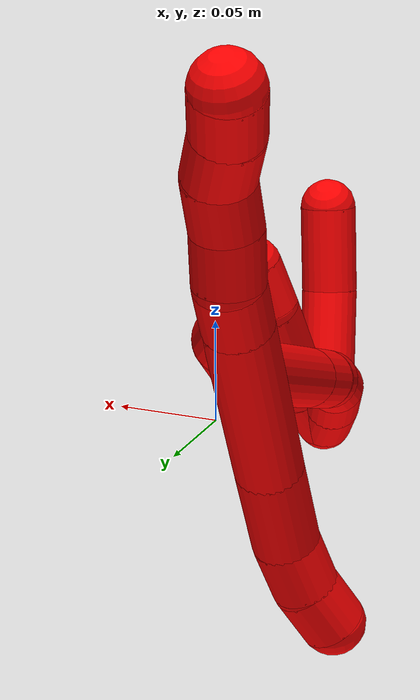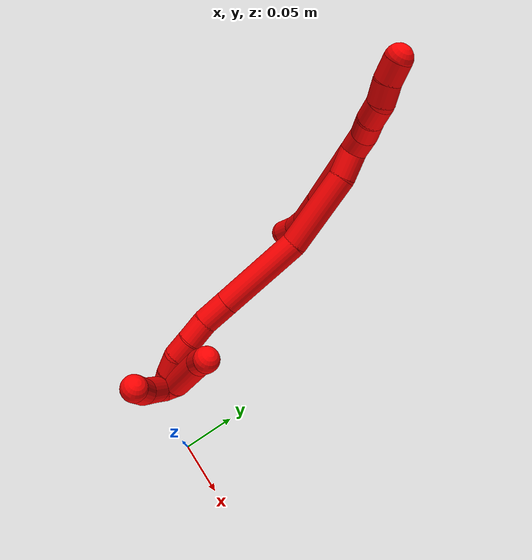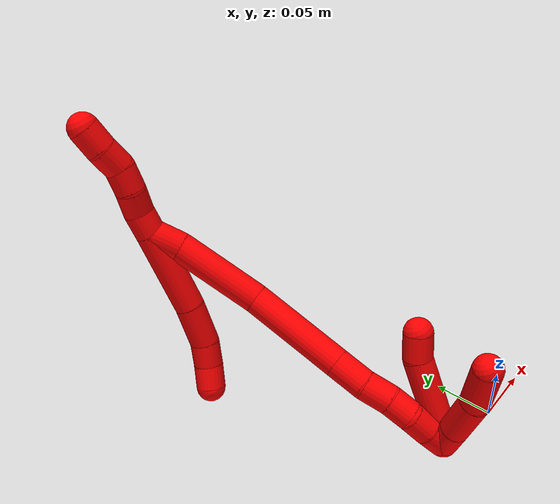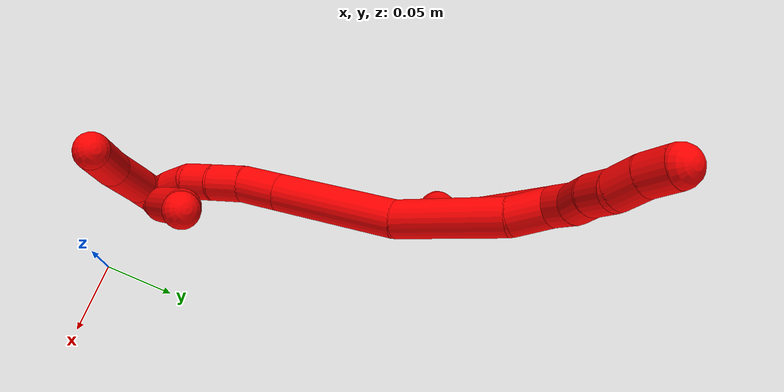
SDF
<sdf version="1.7">
 <world name="default">
  <model name="2">
   <static>0</static>
   <link name="2">
    <collision name="collision-cylinder-e_1_2_8">
     <pose>-0.000121 -0.000387 -0.035469 3.13068 -0.003402 -0.604463</pose>
     <geometry><cylinder><radius>0.0125</radius><length>0.070943</length></cylinder></geometry>
     <surface>
      <friction><ode><mu>1.16</mu><mu2>1.16</mu2><slip1>0</slip1><slip2>0</slip2></ode></friction>
      <contact><ode><kp>1e+06</kp><kd>1</kd><max_vel>0</max_vel><min_depth>0.001</min_depth></ode></contact>
     </surface>
    </collision>
    <visual name="visual-cylinder-e_1_2_8">
     <pose>-0.000121 -0.000387 -0.035469 3.13068 -0.003402 -0.604463</pose>
     <geometry><cylinder><radius>0.0125</radius><length>0.070943</length></cylinder></geometry>
     <material><ambient>1 0 0 1</ambient></material>
    </visual>
    <collision name="collision-cylinder-e_2_8_9">
     <pose>-0.001223 0.000554 -0.08918 -3.0689 -0.053599 1.27053</pose>
     <geometry><cylinder><radius>0.0125</radius><length>0.036632</length></cylinder></geometry>
     <surface>
      <friction><ode><mu>1.16</mu><mu2>1.16</mu2><slip1>0</slip1><slip2>0</slip2></ode></friction>
      <contact><ode><kp>1e+06</kp><kd>1</kd><max_vel>0</max_vel><min_depth>0.001</min_depth></ode></contact>
     </surface>
    </collision>
    <visual name="visual-cylinder-e_2_8_9">
     <pose>-0.001223 0.000554 -0.08918 -3.0689 -0.053599 1.27053</pose>
     <geometry><cylinder><radius>0.0125</radius><length>0.036632</length></cylinder></geometry>
     <material><ambient>1 0 0 1</ambient></material>
    </visual>
    <collision name="collision-cylinder-e_3_9_10">
     <pose>-0.004953 0.003453 -0.117774 -2.99108 -0.256724 2.08422</pose>
     <geometry><cylinder><radius>0.0125</radius><length>0.021652</length></cylinder></geometry>
     <surface>
      <friction><ode><mu>1.16</mu><mu2>1.16</mu2><slip1>0</slip1><slip2>0</slip2></ode></friction>
      <contact><ode><kp>1e+06</kp><kd>1</kd><max_vel>0</max_vel><min_depth>0.001</min_depth></ode></contact>
     </surface>
    </collision>
    <visual name="visual-cylinder-e_3_9_10">
     <pose>-0.004953 0.003453 -0.117774 -2.99108 -0.256724 2.08422</pose>
     <geometry><cylinder><radius>0.0125</radius><length>0.021652</length></cylinder></geometry>
     <material><ambient>1 0 0 1</ambient></material>
    </visual>
    <collision name="collision-cylinder-e_4_10_6">
     <pose>-0.011869 0.005328 -0.137636 -3.10952 -0.412831 2.9887</pose>
     <geometry><cylinder><radius>0.0125</radius><length>0.020773</length></cylinder></geometry>
     <surface>
      <friction><ode><mu>1.16</mu><mu2>1.16</mu2><slip1>0</slip1><slip2>0</slip2></ode></friction>
      <contact><ode><kp>1e+06</kp><kd>1</kd><max_vel>0</max_vel><min_depth>0.001</min_depth></ode></contact>
     </surface>
    </collision>
    <visual name="visual-cylinder-e_4_10_6">
     <pose>-0.011869 0.005328 -0.137636 -3.10952 -0.412831 2.9887</pose>
     <geometry><cylinder><radius>0.0125</radius><length>0.020773</length></cylinder></geometry>
     <material><ambient>1 0 0 1</ambient></material>
    </visual>
    <collision name="collision-cylinder-e_1_2_11">
     <pose>-9.2e-05 0.000289 0.009995 -0.028933 -0.009156 0.000132</pose>
     <geometry><cylinder><radius>0.0125</radius><length>0.02</length></cylinder></geometry>
     <surface>
      <friction><ode><mu>1.16</mu><mu2>1.16</mu2><slip1>0</slip1><slip2>0</slip2></ode></friction>
      <contact><ode><kp>1e+06</kp><kd>1</kd><max_vel>0</max_vel><min_depth>0.001</min_depth></ode></contact>
     </surface>
    </collision>
    <visual name="visual-cylinder-e_1_2_11">
     <pose>-9.2e-05 0.000289 0.009995 -0.028933 -0.009156 0.000132</pose>
     <geometry><cylinder><radius>0.0125</radius><length>0.02</length></cylinder></geometry>
     <material><ambient>1 0 0 1</ambient></material>
    </visual>
    <collision name="collision-cylinder-e_2_11_12">
     <pose>-0.000565 -0.001994 0.029647 0.260417 -0.038159 -0.004997</pose>
     <geometry><cylinder><radius>0.0125</radius><length>0.02</length></cylinder></geometry>
     <surface>
      <friction><ode><mu>1.16</mu><mu2>1.16</mu2><slip1>0</slip1><slip2>0</slip2></ode></friction>
      <contact><ode><kp>1e+06</kp><kd>1</kd><max_vel>0</max_vel><min_depth>0.001</min_depth></ode></contact>
     </surface>
    </collision>
    <visual name="visual-cylinder-e_2_11_12">
     <pose>-0.000565 -0.001994 0.029647 0.260417 -0.038159 -0.004997</pose>
     <geometry><cylinder><radius>0.0125</radius><length>0.02</length></cylinder></geometry>
     <material><ambient>1 0 0 1</ambient></material>
    </visual>
    <collision name="collision-cylinder-e_3_12_13">
     <pose>-0.000945 -0.005323 0.049274 0.075676 8.7e-05 3e-06</pose>
     <geometry><cylinder><radius>0.0125</radius><length>0.02</length></cylinder></geometry>
     <surface>
      <friction><ode><mu>1.16</mu><mu2>1.16</mu2><slip1>0</slip1><slip2>0</slip2></ode></friction>
      <contact><ode><kp>1e+06</kp><kd>1</kd><max_vel>0</max_vel><min_depth>0.001</min_depth></ode></contact>
     </surface>
    </collision>
    <visual name="visual-cylinder-e_3_12_13">
     <pose>-0.000945 -0.005323 0.049274 0.075676 8.7e-05 3e-06</pose>
     <geometry><cylinder><radius>0.0125</radius><length>0.02</length></cylinder></geometry>
     <material><ambient>1 0 0 1</ambient></material>
    </visual>
    <collision name="collision-cylinder-e_4_13_14">
     <pose>-0.004135 -0.005666 0.068714 -0.043645 -0.324708 0.00715</pose>
     <geometry><cylinder><radius>0.0125</radius><length>0.02</length></cylinder></geometry>
     <surface>
      <friction><ode><mu>1.16</mu><mu2>1.16</mu2><slip1>0</slip1><slip2>0</slip2></ode></friction>
      <contact><ode><kp>1e+06</kp><kd>1</kd><max_vel>0</max_vel><min_depth>0.001</min_depth></ode></contact>
     </surface>
    </collision>
    <visual name="visual-cylinder-e_4_13_14">
     <pose>-0.004135 -0.005666 0.068714 -0.043645 -0.324708 0.00715</pose>
     <geometry><cylinder><radius>0.0125</radius><length>0.02</length></cylinder></geometry>
     <material><ambient>1 0 0 1</ambient></material>
    </visual>
    <collision name="collision-cylinder-e_5_14_5">
     <pose>-0.00917 -0.004054 0.087937 -0.122206 -0.185556 0.011385</pose>
     <geometry><cylinder><radius>0.0125</radius><length>0.02</length></cylinder></geometry>
     <surface>
      <friction><ode><mu>1.16</mu><mu2>1.16</mu2><slip1>0</slip1><slip2>0</slip2></ode></friction>
      <contact><ode><kp>1e+06</kp><kd>1</kd><max_vel>0</max_vel><min_depth>0.001</min_depth></ode></contact>
     </surface>
    </collision>
    <visual name="visual-cylinder-e_5_14_5">
     <pose>-0.00917 -0.004054 0.087937 -0.122206 -0.185556 0.011385</pose>
     <geometry><cylinder><radius>0.0125</radius><length>0.02</length></cylinder></geometry>
     <material><ambient>1 0 0 1</ambient></material>
    </visual>
    <collision name="collision-cylinder-e_1_2_15">
     <pose>0.00533 -0.006394 -0.010118 2.578 0.418969 1.26685</pose>
     <geometry><cylinder><radius>0.0125</radius><length>0.026205</length></cylinder></geometry>
     <surface>
      <friction><ode><mu>1.16</mu><mu2>1.16</mu2><slip1>0</slip1><slip2>0</slip2></ode></friction>
      <contact><ode><kp>1e+06</kp><kd>1</kd><max_vel>0</max_vel><min_depth>0.001</min_depth></ode></contact>
     </surface>
    </collision>
    <visual name="visual-cylinder-e_1_2_15">
     <pose>0.00533 -0.006394 -0.010118 2.578 0.418969 1.26685</pose>
     <geometry><cylinder><radius>0.0125</radius><length>0.026205</length></cylinder></geometry>
     <material><ambient>1 0 0 1</ambient></material>
    </visual>
    <collision name="collision-cylinder-e_2_15_16">
     <pose>0.018125 -0.033444 -0.050683 2.54551 0.200152 0.631839</pose>
     <geometry><cylinder><radius>0.0125</radius><length>0.075084</length></cylinder></geometry>
     <surface>
      <friction><ode><mu>1.16</mu><mu2>1.16</mu2><slip1>0</slip1><slip2>0</slip2></ode></friction>
      <contact><ode><kp>1e+06</kp><kd>1</kd><max_vel>0</max_vel><min_depth>0.001</min_depth></ode></contact>
     </surface>
    </collision>
    <visual name="visual-cylinder-e_2_15_16">
     <pose>0.018125 -0.033444 -0.050683 2.54551 0.200152 0.631839</pose>
     <geometry><cylinder><radius>0.0125</radius><length>0.075084</length></cylinder></geometry>
     <material><ambient>1 0 0 1</ambient></material>
    </visual>
    <collision name="collision-cylinder-e_3_16_17">
     <pose>0.026006 -0.082674 -0.112423 2.40158 0.00986 0.02542</pose>
     <geometry><cylinder><radius>0.0125</radius><length>0.084756</length></cylinder></geometry>
     <surface>
      <friction><ode><mu>1.16</mu><mu2>1.16</mu2><slip1>0</slip1><slip2>0</slip2></ode></friction>
      <contact><ode><kp>1e+06</kp><kd>1</kd><max_vel>0</max_vel><min_depth>0.001</min_depth></ode></contact>
     </surface>
    </collision>
    <visual name="visual-cylinder-e_3_16_17">
     <pose>0.026006 -0.082674 -0.112423 2.40158 0.00986 0.02542</pose>
     <geometry><cylinder><radius>0.0125</radius><length>0.084756</length></cylinder></geometry>
     <material><ambient>1 0 0 1</ambient></material>
    </visual>
    <collision name="collision-cylinder-e_4_17_18">
     <pose>0.026554 -0.120813 -0.1541 2.3972 0.009195 0.023553</pose>
     <geometry><cylinder><radius>0.0125</radius><length>0.028238</length></cylinder></geometry>
     <surface>
      <friction><ode><mu>1.16</mu><mu2>1.16</mu2><slip1>0</slip1><slip2>0</slip2></ode></friction>
      <contact><ode><kp>1e+06</kp><kd>1</kd><max_vel>0</max_vel><min_depth>0.001</min_depth></ode></contact>
     </surface>
    </collision>
    <visual name="visual-cylinder-e_4_17_18">
     <pose>0.026554 -0.120813 -0.1541 2.3972 0.009195 0.023553</pose>
     <geometry><cylinder><radius>0.0125</radius><length>0.028238</length></cylinder></geometry>
     <material><ambient>1 0 0 1</ambient></material>
    </visual>
    <collision name="collision-cylinder-e_5_18_19">
     <pose>0.028753 -0.138279 -0.173148 2.40226 0.17469 0.444519</pose>
     <geometry><cylinder><radius>0.0125</radius><length>0.023811</length></cylinder></geometry>
     <surface>
      <friction><ode><mu>1.16</mu><mu2>1.16</mu2><slip1>0</slip1><slip2>0</slip2></ode></friction>
      <contact><ode><kp>1e+06</kp><kd>1</kd><max_vel>0</max_vel><min_depth>0.001</min_depth></ode></contact>
     </surface>
    </collision>
    <visual name="visual-cylinder-e_5_18_19">
     <pose>0.028753 -0.138279 -0.173148 2.40226 0.17469 0.444519</pose>
     <geometry><cylinder><radius>0.0125</radius><length>0.023811</length></cylinder></geometry>
     <material><ambient>1 0 0 1</ambient></material>
    </visual>
    <collision name="collision-cylinder-e_6_19_20">
     <pose>0.032007 -0.15203 -0.190284 2.5372 0.114499 0.363625</pose>
     <geometry><cylinder><radius>0.0125</radius><length>0.020732</length></cylinder></geometry>
     <surface>
      <friction><ode><mu>1.16</mu><mu2>1.16</mu2><slip1>0</slip1><slip2>0</slip2></ode></friction>
      <contact><ode><kp>1e+06</kp><kd>1</kd><max_vel>0</max_vel><min_depth>0.001</min_depth></ode></contact>
     </surface>
    </collision>
    <visual name="visual-cylinder-e_6_19_20">
     <pose>0.032007 -0.15203 -0.190284 2.5372 0.114499 0.363625</pose>
     <geometry><cylinder><radius>0.0125</radius><length>0.020732</length></cylinder></geometry>
     <material><ambient>1 0 0 1</ambient></material>
    </visual>
    <collision name="collision-cylinder-e_7_20_21">
     <pose>0.036014 -0.160926 -0.208339 2.83399 0.273819 1.45309</pose>
     <geometry><cylinder><radius>0.0125</radius><length>0.020882</length></cylinder></geometry>
     <surface>
      <friction><ode><mu>1.16</mu><mu2>1.16</mu2><slip1>0</slip1><slip2>0</slip2></ode></friction>
      <contact><ode><kp>1e+06</kp><kd>1</kd><max_vel>0</max_vel><min_depth>0.001</min_depth></ode></contact>
     </surface>
    </collision>
    <visual name="visual-cylinder-e_7_20_21">
     <pose>0.036014 -0.160926 -0.208339 2.83399 0.273819 1.45309</pose>
     <geometry><cylinder><radius>0.0125</radius><length>0.020882</length></cylinder></geometry>
     <material><ambient>1 0 0 1</ambient></material>
    </visual>
    <collision name="collision-cylinder-e_8_21_1">
     <pose>0.042391 -0.166254 -0.227144 2.89885 0.357751 1.95466</pose>
     <geometry><cylinder><radius>0.0125</radius><length>0.020292</length></cylinder></geometry>
     <surface>
      <friction><ode><mu>1.16</mu><mu2>1.16</mu2><slip1>0</slip1><slip2>0</slip2></ode></friction>
      <contact><ode><kp>1e+06</kp><kd>1</kd><max_vel>0</max_vel><min_depth>0.001</min_depth></ode></contact>
     </surface>
    </collision>
    <visual name="visual-cylinder-e_8_21_1">
     <pose>0.042391 -0.166254 -0.227144 2.89885 0.357751 1.95466</pose>
     <geometry><cylinder><radius>0.0125</radius><length>0.020292</length></cylinder></geometry>
     <material><ambient>1 0 0 1</ambient></material>
    </visual>
    <collision name="collision-cylinder-e_1_1_22">
     <pose>0.049655 -0.167315 -0.225392 -0.110962 0.324149 -0.018161</pose>
     <geometry><cylinder><radius>0.0125</radius><length>0.023304</length></cylinder></geometry>
     <surface>
      <friction><ode><mu>1.16</mu><mu2>1.16</mu2><slip1>0</slip1><slip2>0</slip2></ode></friction>
      <contact><ode><kp>1e+06</kp><kd>1</kd><max_vel>0</max_vel><min_depth>0.001</min_depth></ode></contact>
     </surface>
    </collision>
    <visual name="visual-cylinder-e_1_1_22">
     <pose>0.049655 -0.167315 -0.225392 -0.110962 0.324149 -0.018161</pose>
     <geometry><cylinder><radius>0.0125</radius><length>0.023304</length></cylinder></geometry>
     <material><ambient>1 0 0 1</ambient></material>
    </visual>
    <collision name="collision-cylinder-e_2_22_23">
     <pose>0.056671 -0.165251 -0.187544 -0.031277 0.122313 -0.001915</pose>
     <geometry><cylinder><radius>0.0125</radius><length>0.054172</length></cylinder></geometry>
     <surface>
      <friction><ode><mu>1.16</mu><mu2>1.16</mu2><slip1>0</slip1><slip2>0</slip2></ode></friction>
      <contact><ode><kp>1e+06</kp><kd>1</kd><max_vel>0</max_vel><min_depth>0.001</min_depth></ode></contact>
     </surface>
    </collision>
    <visual name="visual-cylinder-e_2_22_23">
     <pose>0.056671 -0.165251 -0.187544 -0.031277 0.122313 -0.001915</pose>
     <geometry><cylinder><radius>0.0125</radius><length>0.054172</length></cylinder></geometry>
     <material><ambient>1 0 0 1</ambient></material>
    </visual>
    <collision name="collision-cylinder-e_3_23_4">
     <pose>0.063217 -0.166857 -0.15017 0.228821 0.291961 0.033787</pose>
     <geometry><cylinder><radius>0.0125</radius><length>0.022524</length></cylinder></geometry>
     <surface>
      <friction><ode><mu>1.16</mu><mu2>1.16</mu2><slip1>0</slip1><slip2>0</slip2></ode></friction>
      <contact><ode><kp>1e+06</kp><kd>1</kd><max_vel>0</max_vel><min_depth>0.001</min_depth></ode></contact>
     </surface>
    </collision>
    <visual name="visual-cylinder-e_3_23_4">
     <pose>0.063217 -0.166857 -0.15017 0.228821 0.291961 0.033787</pose>
     <geometry><cylinder><radius>0.0125</radius><length>0.022524</length></cylinder></geometry>
     <material><ambient>1 0 0 1</ambient></material>
    </visual>
    <collision name="collision-cylinder-e_1_1_24">
     <pose>0.046452 -0.176712 -0.228093 0.779122 0.04367 0.017931</pose>
     <geometry><cylinder><radius>0.0125</radius><length>0.023287</length></cylinder></geometry>
     <surface>
      <friction><ode><mu>1.16</mu><mu2>1.16</mu2><slip1>0</slip1><slip2>0</slip2></ode></friction>
      <contact><ode><kp>1e+06</kp><kd>1</kd><max_vel>0</max_vel><min_depth>0.001</min_depth></ode></contact>
     </surface>
    </collision>
    <visual name="visual-cylinder-e_1_1_24">
     <pose>0.046452 -0.176712 -0.228093 0.779122 0.04367 0.017931</pose>
     <geometry><cylinder><radius>0.0125</radius><length>0.023287</length></cylinder></geometry>
     <material><ambient>1 0 0 1</ambient></material>
    </visual>
    <collision name="collision-cylinder-e_2_24_25">
     <pose>0.048362 -0.198035 -0.206177 0.767183 0.073877 0.029827</pose>
     <geometry><cylinder><radius>0.0125</radius><length>0.037995</length></cylinder></geometry>
     <surface>
      <friction><ode><mu>1.16</mu><mu2>1.16</mu2><slip1>0</slip1><slip2>0</slip2></ode></friction>
      <contact><ode><kp>1e+06</kp><kd>1</kd><max_vel>0</max_vel><min_depth>0.001</min_depth></ode></contact>
     </surface>
    </collision>
    <visual name="visual-cylinder-e_2_24_25">
     <pose>0.048362 -0.198035 -0.206177 0.767183 0.073877 0.029827</pose>
     <geometry><cylinder><radius>0.0125</radius><length>0.037995</length></cylinder></geometry>
     <material><ambient>1 0 0 1</ambient></material>
    </visual>
    <collision name="collision-cylinder-e_3_25_3">
     <pose>0.050957 -0.221643 -0.176291 0.571874 0.061647 0.018129</pose>
     <geometry><cylinder><radius>0.0125</radius><length>0.038718</length></cylinder></geometry>
     <surface>
      <friction><ode><mu>1.16</mu><mu2>1.16</mu2><slip1>0</slip1><slip2>0</slip2></ode></friction>
      <contact><ode><kp>1e+06</kp><kd>1</kd><max_vel>0</max_vel><min_depth>0.001</min_depth></ode></contact>
     </surface>
    </collision>
    <visual name="visual-cylinder-e_3_25_3">
     <pose>0.050957 -0.221643 -0.176291 0.571874 0.061647 0.018129</pose>
     <geometry><cylinder><radius>0.0125</radius><length>0.038718</length></cylinder></geometry>
     <material><ambient>1 0 0 1</ambient></material>
    </visual>
    <collision name="collision-sphere-3">
     <pose>0.05215 -0.232101 -0.160043 0 -0 0</pose>
     <geometry><sphere><radius>0.0125</radius></sphere></geometry>
     <surface>
      <friction><ode><mu>1.16</mu><mu2>1.16</mu2><slip1>0</slip1><slip2>0</slip2></ode></friction>
      <contact><ode><kp>1e+06</kp><kd>1</kd><max_vel>0</max_vel><min_depth>0.001</min_depth></ode></contact>
     </surface>
    </collision>
    <visual name="visual-sphere-3">
     <pose>0.05215 -0.232101 -0.160043 0 -0 0</pose>
     <geometry><sphere><radius>0.0125</radius></sphere></geometry>
     <material><ambient>1 0 0 1</ambient></material>
    </visual>
    <collision name="collision-sphere-25">
     <pose>0.049765 -0.211186 -0.192539 0 -0 0</pose>
     <geometry><sphere><radius>0.0125</radius></sphere></geometry>
     <surface>
      <friction><ode><mu>1.16</mu><mu2>1.16</mu2><slip1>0</slip1><slip2>0</slip2></ode></friction>
      <contact><ode><kp>1e+06</kp><kd>1</kd><max_vel>0</max_vel><min_depth>0.001</min_depth></ode></contact>
     </surface>
    </collision>
    <visual name="visual-sphere-25">
     <pose>0.049765 -0.211186 -0.192539 0 -0 0</pose>
     <geometry><sphere><radius>0.0125</radius></sphere></geometry>
     <material><ambient>1 0 0 1</ambient></material>
    </visual>
    <collision name="collision-sphere-24">
     <pose>0.04696 -0.184885 -0.219816 0 -0 0</pose>
     <geometry><sphere><radius>0.0125</radius></sphere></geometry>
     <surface>
      <friction><ode><mu>1.16</mu><mu2>1.16</mu2><slip1>0</slip1><slip2>0</slip2></ode></friction>
      <contact><ode><kp>1e+06</kp><kd>1</kd><max_vel>0</max_vel><min_depth>0.001</min_depth></ode></contact>
     </surface>
    </collision>
    <visual name="visual-sphere-24">
     <pose>0.04696 -0.184885 -0.219816 0 -0 0</pose>
     <geometry><sphere><radius>0.0125</radius></sphere></geometry>
     <material><ambient>1 0 0 1</ambient></material>
    </visual>
    <collision name="collision-sphere-4">
     <pose>0.066458 -0.169303 -0.139665 0 -0 0</pose>
     <geometry><sphere><radius>0.0125</radius></sphere></geometry>
     <surface>
      <friction><ode><mu>1.16</mu><mu2>1.16</mu2><slip1>0</slip1><slip2>0</slip2></ode></friction>
      <contact><ode><kp>1e+06</kp><kd>1</kd><max_vel>0</max_vel><min_depth>0.001</min_depth></ode></contact>
     </surface>
    </collision>
    <visual name="visual-sphere-4">
     <pose>0.066458 -0.169303 -0.139665 0 -0 0</pose>
     <geometry><sphere><radius>0.0125</radius></sphere></geometry>
     <material><ambient>1 0 0 1</ambient></material>
    </visual>
    <collision name="collision-sphere-23">
     <pose>0.059975 -0.164411 -0.160674 0 -0 0</pose>
     <geometry><sphere><radius>0.0125</radius></sphere></geometry>
     <surface>
      <friction><ode><mu>1.16</mu><mu2>1.16</mu2><slip1>0</slip1><slip2>0</slip2></ode></friction>
      <contact><ode><kp>1e+06</kp><kd>1</kd><max_vel>0</max_vel><min_depth>0.001</min_depth></ode></contact>
     </surface>
    </collision>
    <visual name="visual-sphere-23">
     <pose>0.059975 -0.164411 -0.160674 0 -0 0</pose>
     <geometry><sphere><radius>0.0125</radius></sphere></geometry>
     <material><ambient>1 0 0 1</ambient></material>
    </visual>
    <collision name="collision-sphere-22">
     <pose>0.053366 -0.166092 -0.214415 0 -0 0</pose>
     <geometry><sphere><radius>0.0125</radius></sphere></geometry>
     <surface>
      <friction><ode><mu>1.16</mu><mu2>1.16</mu2><slip1>0</slip1><slip2>0</slip2></ode></friction>
      <contact><ode><kp>1e+06</kp><kd>1</kd><max_vel>0</max_vel><min_depth>0.001</min_depth></ode></contact>
     </surface>
    </collision>
    <visual name="visual-sphere-22">
     <pose>0.053366 -0.166092 -0.214415 0 -0 0</pose>
     <geometry><sphere><radius>0.0125</radius></sphere></geometry>
     <material><ambient>1 0 0 1</ambient></material>
    </visual>
    <collision name="collision-sphere-1">
     <pose>0.045944 -0.168538 -0.236369 0 -0 0</pose>
     <geometry><sphere><radius>0.0125</radius></sphere></geometry>
     <surface>
      <friction><ode><mu>1.16</mu><mu2>1.16</mu2><slip1>0</slip1><slip2>0</slip2></ode></friction>
      <contact><ode><kp>1e+06</kp><kd>1</kd><max_vel>0</max_vel><min_depth>0.001</min_depth></ode></contact>
     </surface>
    </collision>
    <visual name="visual-sphere-1">
     <pose>0.045944 -0.168538 -0.236369 0 -0 0</pose>
     <geometry><sphere><radius>0.0125</radius></sphere></geometry>
     <material><ambient>1 0 0 1</ambient></material>
    </visual>
    <collision name="collision-sphere-21">
     <pose>0.038838 -0.163969 -0.217919 0 -0 0</pose>
     <geometry><sphere><radius>0.0125</radius></sphere></geometry>
     <surface>
      <friction><ode><mu>1.16</mu><mu2>1.16</mu2><slip1>0</slip1><slip2>0</slip2></ode></friction>
      <contact><ode><kp>1e+06</kp><kd>1</kd><max_vel>0</max_vel><min_depth>0.001</min_depth></ode></contact>
     </surface>
    </collision>
    <visual name="visual-sphere-21">
     <pose>0.038838 -0.163969 -0.217919 0 -0 0</pose>
     <geometry><sphere><radius>0.0125</radius></sphere></geometry>
     <material><ambient>1 0 0 1</ambient></material>
    </visual>
    <collision name="collision-sphere-11">
     <pose>-0.000183 0.000579 0.019991 0 -0 0</pose>
     <geometry><sphere><radius>0.0125</radius></sphere></geometry>
     <surface>
      <friction><ode><mu>1.16</mu><mu2>1.16</mu2><slip1>0</slip1><slip2>0</slip2></ode></friction>
      <contact><ode><kp>1e+06</kp><kd>1</kd><max_vel>0</max_vel><min_depth>0.001</min_depth></ode></contact>
     </surface>
    </collision>
    <visual name="visual-sphere-11">
     <pose>-0.000183 0.000579 0.019991 0 -0 0</pose>
     <geometry><sphere><radius>0.0125</radius></sphere></geometry>
     <material><ambient>1 0 0 1</ambient></material>
    </visual>
    <collision name="collision-sphere-6">
     <pose>-0.016036 0.005633 -0.147145 0 -0 0</pose>
     <geometry><sphere><radius>0.0125</radius></sphere></geometry>
     <surface>
      <friction><ode><mu>1.16</mu><mu2>1.16</mu2><slip1>0</slip1><slip2>0</slip2></ode></friction>
      <contact><ode><kp>1e+06</kp><kd>1</kd><max_vel>0</max_vel><min_depth>0.001</min_depth></ode></contact>
     </surface>
    </collision>
    <visual name="visual-sphere-6">
     <pose>-0.016036 0.005633 -0.147145 0 -0 0</pose>
     <geometry><sphere><radius>0.0125</radius></sphere></geometry>
     <material><ambient>1 0 0 1</ambient></material>
    </visual>
    <collision name="collision-sphere-10">
     <pose>-0.007702 0.005023 -0.128127 0 -0 0</pose>
     <geometry><sphere><radius>0.0125</radius></sphere></geometry>
     <surface>
      <friction><ode><mu>1.16</mu><mu2>1.16</mu2><slip1>0</slip1><slip2>0</slip2></ode></friction>
      <contact><ode><kp>1e+06</kp><kd>1</kd><max_vel>0</max_vel><min_depth>0.001</min_depth></ode></contact>
     </surface>
    </collision>
    <visual name="visual-sphere-10">
     <pose>-0.007702 0.005023 -0.128127 0 -0 0</pose>
     <geometry><sphere><radius>0.0125</radius></sphere></geometry>
     <material><ambient>1 0 0 1</ambient></material>
    </visual>
    <collision name="collision-sphere-9">
     <pose>-0.002204 0.001883 -0.107421 0 -0 0</pose>
     <geometry><sphere><radius>0.0125</radius></sphere></geometry>
     <surface>
      <friction><ode><mu>1.16</mu><mu2>1.16</mu2><slip1>0</slip1><slip2>0</slip2></ode></friction>
      <contact><ode><kp>1e+06</kp><kd>1</kd><max_vel>0</max_vel><min_depth>0.001</min_depth></ode></contact>
     </surface>
    </collision>
    <visual name="visual-sphere-9">
     <pose>-0.002204 0.001883 -0.107421 0 -0 0</pose>
     <geometry><sphere><radius>0.0125</radius></sphere></geometry>
     <material><ambient>1 0 0 1</ambient></material>
    </visual>
    <collision name="collision-sphere-2">
     <geometry><sphere><radius>0.0125</radius></sphere></geometry>
     <surface>
      <friction><ode><mu>1.16</mu><mu2>1.16</mu2><slip1>0</slip1><slip2>0</slip2></ode></friction>
      <contact><ode><kp>1e+06</kp><kd>1</kd><max_vel>0</max_vel><min_depth>0.001</min_depth></ode></contact>
     </surface>
    </collision>
    <visual name="visual-sphere-2">
     <geometry><sphere><radius>0.0125</radius></sphere></geometry>
     <material><ambient>1 0 0 1</ambient></material>
    </visual>
    <collision name="collision-sphere-19">
     <pose>0.030822 -0.146178 -0.181811 0 -0 0</pose>
     <geometry><sphere><radius>0.0125</radius></sphere></geometry>
     <surface>
      <friction><ode><mu>1.16</mu><mu2>1.16</mu2><slip1>0</slip1><slip2>0</slip2></ode></friction>
      <contact><ode><kp>1e+06</kp><kd>1</kd><max_vel>0</max_vel><min_depth>0.001</min_depth></ode></contact>
     </surface>
    </collision>
    <visual name="visual-sphere-19">
     <pose>0.030822 -0.146178 -0.181811 0 -0 0</pose>
     <geometry><sphere><radius>0.0125</radius></sphere></geometry>
     <material><ambient>1 0 0 1</ambient></material>
    </visual>
    <collision name="collision-sphere-8">
     <pose>-0.000241 -0.000774 -0.070938 0 -0 0</pose>
     <geometry><sphere><radius>0.0125</radius></sphere></geometry>
     <surface>
      <friction><ode><mu>1.16</mu><mu2>1.16</mu2><slip1>0</slip1><slip2>0</slip2></ode></friction>
      <contact><ode><kp>1e+06</kp><kd>1</kd><max_vel>0</max_vel><min_depth>0.001</min_depth></ode></contact>
     </surface>
    </collision>
    <visual name="visual-sphere-8">
     <pose>-0.000241 -0.000774 -0.070938 0 -0 0</pose>
     <geometry><sphere><radius>0.0125</radius></sphere></geometry>
     <material><ambient>1 0 0 1</ambient></material>
    </visual>
    <collision name="collision-sphere-12">
     <pose>-0.000946 -0.004567 0.039302 0 -0 0</pose>
     <geometry><sphere><radius>0.0125</radius></sphere></geometry>
     <surface>
      <friction><ode><mu>1.16</mu><mu2>1.16</mu2><slip1>0</slip1><slip2>0</slip2></ode></friction>
      <contact><ode><kp>1e+06</kp><kd>1</kd><max_vel>0</max_vel><min_depth>0.001</min_depth></ode></contact>
     </surface>
    </collision>
    <visual name="visual-sphere-12">
     <pose>-0.000946 -0.004567 0.039302 0 -0 0</pose>
     <geometry><sphere><radius>0.0125</radius></sphere></geometry>
     <material><ambient>1 0 0 1</ambient></material>
    </visual>
    <collision name="collision-sphere-13">
     <pose>-0.000944 -0.006079 0.059245 0 -0 0</pose>
     <geometry><sphere><radius>0.0125</radius></sphere></geometry>
     <surface>
      <friction><ode><mu>1.16</mu><mu2>1.16</mu2><slip1>0</slip1><slip2>0</slip2></ode></friction>
      <contact><ode><kp>1e+06</kp><kd>1</kd><max_vel>0</max_vel><min_depth>0.001</min_depth></ode></contact>
     </surface>
    </collision>
    <visual name="visual-sphere-13">
     <pose>-0.000944 -0.006079 0.059245 0 -0 0</pose>
     <geometry><sphere><radius>0.0125</radius></sphere></geometry>
     <material><ambient>1 0 0 1</ambient></material>
    </visual>
    <collision name="collision-sphere-14">
     <pose>-0.007325 -0.005252 0.078182 0 -0 0</pose>
     <geometry><sphere><radius>0.0125</radius></sphere></geometry>
     <surface>
      <friction><ode><mu>1.16</mu><mu2>1.16</mu2><slip1>0</slip1><slip2>0</slip2></ode></friction>
      <contact><ode><kp>1e+06</kp><kd>1</kd><max_vel>0</max_vel><min_depth>0.001</min_depth></ode></contact>
     </surface>
    </collision>
    <visual name="visual-sphere-14">
     <pose>-0.007325 -0.005252 0.078182 0 -0 0</pose>
     <geometry><sphere><radius>0.0125</radius></sphere></geometry>
     <material><ambient>1 0 0 1</ambient></material>
    </visual>
    <collision name="collision-sphere-5">
     <pose>-0.011015 -0.002856 0.097692 0 -0 0</pose>
     <geometry><sphere><radius>0.0125</radius></sphere></geometry>
     <surface>
      <friction><ode><mu>1.16</mu><mu2>1.16</mu2><slip1>0</slip1><slip2>0</slip2></ode></friction>
      <contact><ode><kp>1e+06</kp><kd>1</kd><max_vel>0</max_vel><min_depth>0.001</min_depth></ode></contact>
     </surface>
    </collision>
    <visual name="visual-sphere-5">
     <pose>-0.011015 -0.002856 0.097692 0 -0 0</pose>
     <geometry><sphere><radius>0.0125</radius></sphere></geometry>
     <material><ambient>1 0 0 1</ambient></material>
    </visual>
    <collision name="collision-sphere-15">
     <pose>0.010661 -0.012789 -0.020236 0 -0 0</pose>
     <geometry><sphere><radius>0.0125</radius></sphere></geometry>
     <surface>
      <friction><ode><mu>1.16</mu><mu2>1.16</mu2><slip1>0</slip1><slip2>0</slip2></ode></friction>
      <contact><ode><kp>1e+06</kp><kd>1</kd><max_vel>0</max_vel><min_depth>0.001</min_depth></ode></contact>
     </surface>
    </collision>
    <visual name="visual-sphere-15">
     <pose>0.010661 -0.012789 -0.020236 0 -0 0</pose>
     <geometry><sphere><radius>0.0125</radius></sphere></geometry>
     <material><ambient>1 0 0 1</ambient></material>
    </visual>
    <collision name="collision-sphere-16">
     <pose>0.025589 -0.0541 -0.08113 0 -0 0</pose>
     <geometry><sphere><radius>0.0125</radius></sphere></geometry>
     <surface>
      <friction><ode><mu>1.16</mu><mu2>1.16</mu2><slip1>0</slip1><slip2>0</slip2></ode></friction>
      <contact><ode><kp>1e+06</kp><kd>1</kd><max_vel>0</max_vel><min_depth>0.001</min_depth></ode></contact>
     </surface>
    </collision>
    <visual name="visual-sphere-16">
     <pose>0.025589 -0.0541 -0.08113 0 -0 0</pose>
     <geometry><sphere><radius>0.0125</radius></sphere></geometry>
     <material><ambient>1 0 0 1</ambient></material>
    </visual>
    <collision name="collision-sphere-17">
     <pose>0.026424 -0.111248 -0.143716 0 -0 0</pose>
     <geometry><sphere><radius>0.0125</radius></sphere></geometry>
     <surface>
      <friction><ode><mu>1.16</mu><mu2>1.16</mu2><slip1>0</slip1><slip2>0</slip2></ode></friction>
      <contact><ode><kp>1e+06</kp><kd>1</kd><max_vel>0</max_vel><min_depth>0.001</min_depth></ode></contact>
     </surface>
    </collision>
    <visual name="visual-sphere-17">
     <pose>0.026424 -0.111248 -0.143716 0 -0 0</pose>
     <geometry><sphere><radius>0.0125</radius></sphere></geometry>
     <material><ambient>1 0 0 1</ambient></material>
    </visual>
    <collision name="collision-sphere-18">
     <pose>0.026684 -0.130379 -0.164484 0 -0 0</pose>
     <geometry><sphere><radius>0.0125</radius></sphere></geometry>
     <surface>
      <friction><ode><mu>1.16</mu><mu2>1.16</mu2><slip1>0</slip1><slip2>0</slip2></ode></friction>
      <contact><ode><kp>1e+06</kp><kd>1</kd><max_vel>0</max_vel><min_depth>0.001</min_depth></ode></contact>
     </surface>
    </collision>
    <visual name="visual-sphere-18">
     <pose>0.026684 -0.130379 -0.164484 0 -0 0</pose>
     <geometry><sphere><radius>0.0125</radius></sphere></geometry>
     <material><ambient>1 0 0 1</ambient></material>
    </visual>
    <collision name="collision-sphere-20">
     <pose>0.033191 -0.157882 -0.198758 0 -0 0</pose>
     <geometry><sphere><radius>0.0125</radius></sphere></geometry>
     <surface>
      <friction><ode><mu>1.16</mu><mu2>1.16</mu2><slip1>0</slip1><slip2>0</slip2></ode></friction>
      <contact><ode><kp>1e+06</kp><kd>1</kd><max_vel>0</max_vel><min_depth>0.001</min_depth></ode></contact>
     </surface>
    </collision>
    <visual name="visual-sphere-20">
     <pose>0.033191 -0.157882 -0.198758 0 -0 0</pose>
     <geometry><sphere><radius>0.0125</radius></sphere></geometry>
     <material><ambient>1 0 0 1</ambient></material>
    </visual>
    <inertial>
     <pose>0.023004 -0.084351 -0.1067 0 -0 0</pose>
     <mass>0.75</mass>
     <inertia><ixx>0.00018</ixx><ixy>0</ixy><ixz>0</ixz><iyy>-5.5e-05</iyy><iyz>0</iyz><izz>5.1e-05</izz></inertia>
    </inertial>
   </link>
   <pose>-0.119073 0.266209 0.146188 -0.470628 0.000836 0.054651</pose>
  </model>
 </world>
</sdf>
